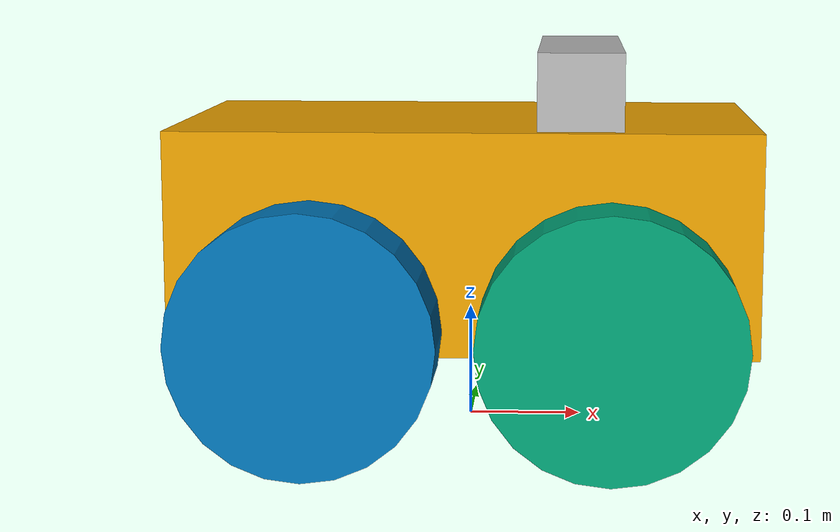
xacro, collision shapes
<?xml version="1.0"?>

<robot
  xmlns:sensor="http://playerstage.sourceforge.net/gazebo/xmlschema/#sensor"
  xmlns:controller="http://playerstage.sourceforge.net/gazebo/xmlschema/#controller"
  xmlns:interface="http://playerstage.sourceforge.net/gazebo/xmlschema/#interface"
  xmlns:xacro="http://ros.org/wiki/xacro"
  name="pioneer3at">

  <xacro:include filename="$(find zs_description)/urdf/include/p3at/pioneer3at_body.xacro"/>

  <xacro:include filename="$(find zs_description)/urdf/include/kinect/kinect.urdf.xacro"/>
  <xacro:sensor_kinect parent="base_link"></xacro:sensor_kinect>

</robot>

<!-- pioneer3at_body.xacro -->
<robot xmlns:sensor="http://playerstage.sourceforge.net/gazebo/xmlschema/#sensor"
  xmlns:controller="http://playerstage.sourceforge.net/gazebo/xmlschema/#controller"
  xmlns:interface="http://playerstage.sourceforge.net/gazebo/xmlschema/#interface"
  xmlns:xacro="http://ros.org/wiki/xacro"
  >

  <!-- Chassis -->
  <link name="base_link">
    <inertial>
      <mass value="14.0"/>
      <origin xyz="0 0 0.177"/>
      <inertia ixx="0.14711667" ixy="0.0" ixz="0.0"
        iyy="0.334951167" iyz="0.0"
        izz="0.3978345"/>
    </inertial>
    <visual name="base_visual">
      <origin xyz="0 0 0.18" rpy="0 0 0"/>
      <geometry name="pioneer_geom">
        <mesh filename="package://zs_description/meshes/p3at_add/chassis.dae"/>
      </geometry>
    </visual>
    <collision>
      <origin xyz="0 0 0.18" rpy="0 0 0"/>
      <geometry>
        <box size="0.501 0.3 0.19"/>
      </geometry>
    </collision>
  </link>

  <link name="p3at_front_left_wheel">
    <inertial>
      <mass value="1.5"/>
      <origin xyz="0 0 0"/>
      <inertia ixx="0.005240625" ixy="0" ixz="0"
        iyy="0.005240625" iyz="0" izz="0.009075"/>
    </inertial>
    <visual name="visual">
      <origin xyz="0 0 0" rpy="0 0 0"/>
      <geometry name="geom">
        <mesh filename="package://zs_description/meshes/p3at_add/wheel.dae"/>
      </geometry>
    </visual>
    <collision>
      <origin xyz="0 0 0" rpy="0 0 0"/>
      <geometry>
        <cylinder radius="0.110" length="0.075"/>
      </geometry>
    </collision>
  </link>

  <joint name="p3at_front_left_wheel_joint" type="continuous">
    <axis xyz="0 0 -1"/>
    <limit effort="100" velocity="100" />
    <joint_properties damping="0.7"/>
    <origin xyz="0.125 0.2010 0.11" rpy="1.5707 0 0"/>
    <parent link="base_link"/>
    <child link="p3at_front_left_wheel"/>
  </joint>

  <link name="p3at_front_right_wheel">
    <inertial>
      <mass value="1.5"/>
      <origin xyz="0 0 0"/>
      <inertia ixx="0.005240625" ixy="0" ixz="0"
        iyy="0.005240625" iyz="0" izz="0.009075"/>
    </inertial>
    <visual name="visual">
      <origin xyz="0 0 0" rpy="0 0 0"/>
      <geometry name="geom">
        <mesh filename="package://zs_description/meshes/p3at_add/wheel.dae"/>
      </geometry>
    </visual>
    <collision>
      <origin xyz="0 0 0" rpy="0 0 0"/>
      <geometry>
        <cylinder radius="0.110" length="0.075"/>
      </geometry>
    </collision>
  </link>

  <joint name="p3at_front_right_wheel_joint" type="continuous">
    <axis xyz="0 0 -1"/>
    <limit effort="100" velocity="100" />
    <joint_properties damping="0.7"/>
    <origin xyz="0.125 -0.2010 0.11" rpy="1.5707 0 0"/>
    <parent link="base_link"/>
    <child link="p3at_front_right_wheel"/>
  </joint>

  <link name="p3at_rear_left_wheel">
    <inertial>
      <mass value="1.5"/>
      <origin xyz="0 0 0"/>
      <inertia ixx="0.005240625" ixy="0" ixz="0"
        iyy="0.005240625" iyz="0" izz="0.009075"/>
    </inertial>
    <visual name="visual">
      <origin xyz="0 0 0" rpy="0 0 0"/>
      <geometry name="geom">
        <mesh filename="package://zs_description/meshes/p3at_add/wheel.dae"/>
      </geometry>
    </visual>
    <collision>
      <origin xyz="0 0 0" rpy="0 0 0"/>
      <geometry>
        <cylinder radius="0.110" length="0.075"/>
      </geometry>
    </collision>
  </link>

  <joint name="p3at_rear_left_wheel_joint" type="continuous">
    <axis xyz="0 0 -1"/>
    <limit effort="100" velocity="100" />
    <joint_properties damping="0.7"/>
    <origin xyz="-0.125 0.2010 0.11" rpy="1.5707 0 0"/>
    <parent link="base_link"/>
    <child link="p3at_rear_left_wheel"/>
  </joint>

  <link name="p3at_rear_right_wheel">
    <inertial>
      <mass value="1.5"/>
      <origin xyz="0 0 0"/>
      <inertia ixx="0.005240625" ixy="0" ixz="0"
        iyy="0.005240625" iyz="0" izz="0.009075"/>
    </inertial>
    <visual name="visual">
      <origin xyz="0 0 0" rpy="0 0 0"/>
      <geometry name="geom">
        <mesh filename="package://zs_description/meshes/p3at_add/wheel.dae"/>
      </geometry>
    </visual>
    <collision>
      <origin xyz="0 0 0" rpy="0 0 0"/>
      <geometry>
        <cylinder radius="0.110" length="0.075"/>
      </geometry>
    </collision>
  </link>

  <joint name="p3at_rear_right_wheel_joint" type="continuous">
    <axis xyz="0 0 -1"/>
    <limit effort="100" velocity="100" />
    <joint_properties damping="0.7"/>
    <origin xyz="-0.125 -0.2010 0.11" rpy="1.5707 0 0"/>
    <parent link="base_link"/>
    <child link="p3at_rear_right_wheel"/>
  </joint>

  <gazebo>
    <plugin name="skid_steer_drive_controller" filename="libgazebo_ros_skid_steer_drive.so">
      <updateRate>100.0</updateRate>
      <robotNamespace>$(arg robot_name)</robotNamespace>
      <leftFrontJoint>p3at_front_left_wheel_joint</leftFrontJoint>
      <rightFrontJoint>p3at_front_right_wheel_joint</rightFrontJoint>
      <leftRearJoint>p3at_rear_left_wheel_joint</leftRearJoint>
      <rightRearJoint>p3at_rear_right_wheel_joint</rightRearJoint>
      <wheelSeparation>0.4</wheelSeparation>
      <wheelDiameter>0.215</wheelDiameter>
      <robotBaseFrame>base_link</robotBaseFrame>
      <torque>200</torque>
      <commandTopic>cmd_vel</commandTopic>
      <odometryTopic>odom</odometryTopic>
      <odometryFrame>odom</odometryFrame>
      <broadcastTF>true</broadcastTF>
      <covariance_x>0.0001</covariance_x>
      <covariance_y>0.0001</covariance_y>
      <covariance_yaw>0.01</covariance_yaw>
    </plugin>
  </gazebo>

  <gazebo>
    <plugin name="imu_plugin" filename="libgazebo_ros_imu.so">
      <alwaysOn>true</alwaysOn>
      <bodyName>base_link</bodyName>
      <topicName>imu</topicName>
      <serviceName>imu_service</serviceName>
      <gaussianNoise>0.0</gaussianNoise>
      <updateRate>20.0</updateRate>
    </plugin>
  </gazebo>

</robot>

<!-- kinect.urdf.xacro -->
<root name="sensor_kinect" xmlns:xacro="http://ros.org/wiki/xacro">
	<xacro:include filename="$(find zs_description)/urdf/include/kinect/kinect_gazebo.xacro" />
        <xacro:include filename="$(find zs_description)/urdf/include/kinect/kinect_properties.urdf.xacro"/>

   	<!-- camera_name has to be unique! -->
	<xacro:kinect_sensor link_name="camera_depth_frame" camera_name="camera1" frame_name="camera_depth_optical_frame"/>

	<!-- Parameterised in part by the values in kinect_properties.urdf.xacro -->
	<xacro:macro name="sensor_kinect" params="parent">
		<joint name="camera_rgb_joint" type="fixed">
		      <origin xyz="${cam_px} ${cam_py} ${cam_pz}"
			      rpy="${cam_or} ${cam_op} ${cam_oy}"/>
			<parent link="${parent}"/>
			<child link="camera_rgb_frame" />
		</joint>
		<link name="camera_rgb_frame">
			<inertial>
				<mass value="0.001" />
				<origin xyz="0 0 0" />
				<inertia ixx="0.0001" ixy="0.0" ixz="0.0" iyy="0.0001" iyz="0.0" izz="0.0001" />
			</inertial>
		</link>
		<joint name="camera_rgb_optical_joint" type="fixed">
			<origin xyz="0 0 0" rpy="${-M_PI/2} 0 ${-M_PI/2}" />
			<parent link="camera_rgb_frame" />
			<child link="camera_rgb_optical_frame" />
		</joint>
		<link name="camera_rgb_optical_frame">
			<inertial>
				<mass value="0.001" />
				<origin xyz="0 0 0" />
				<inertia ixx="0.0001" ixy="0.0" ixz="0.0" iyy="0.0001" iyz="0.0" izz="0.0001" />
			</inertial>
		</link>

		<joint name="camera_joint" type="fixed">
			<origin xyz="-0.031 ${-cam_py} -0.016" rpy="0 0 0"/>
			<parent link="camera_rgb_frame"/>
			<child link="camera_link"/>
		</joint>
		<!--zs_description-->
		<link name="camera_link">
			<visual>
			 <origin xyz="0 0 0" rpy="0 0 ${M_PI/2}"/>
				<geometry>
				<mesh filename="package://zs_description/meshes/kinect/kinect.dae"/>
				</geometry>
			</visual>
			<collision>
				<origin xyz="0.0 0.0 0.0" rpy="0 0 0"/>
				<geometry>
					<box size="0.07271 0.27794 0.073"/>
				</geometry>
			</collision>
			<inertial>
				<mass value="0.001" />
				<origin xyz="0 0 0" />
				<inertia ixx="0.0001" ixy="0.0" ixz="0.0" iyy="0.0001" iyz="0.0" izz="0.0001" />
			</inertial>
		</link>

		<joint name="camera_depth_joint" type="fixed">
			<origin xyz="0 ${2 * -cam_py} 0" rpy="0 0 0" />
			<parent link="camera_rgb_frame" />
			<child link="camera_depth_frame" />
		</joint>
		<!--zs_description-->
		<link name="camera_depth_frame">
			<inertial>
				<mass value="0.001" />
				<origin xyz="0 0 0" />
				<inertia ixx="0.0001" ixy="0.0" ixz="0.0" iyy="0.0001" iyz="0.0" izz="0.0001" />
			</inertial>
		</link>
		<joint name="camera_depth_optical_joint" type="fixed">
			<origin xyz="0 0 0" rpy="${-M_PI/2} 0 ${-M_PI/2}" />
			<parent link="camera_depth_frame" />
			<child link="camera_depth_optical_frame" />
		</joint>
		<link name="camera_depth_optical_frame">
			<inertial>
				<mass value="0.001" />
				<origin xyz="0 0 0" />
				<inertia ixx="0.0001" ixy="0.0" ixz="0.0" iyy="0.0001" iyz="0.0" izz="0.0001" />
			</inertial>
		</link>
	</xacro:macro>
</root>

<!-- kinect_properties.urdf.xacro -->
<root>
  <!--
    These properties must be observed by any machine
	translation and rotation of camera from the tabletop
   -->
	<property name="cam_px" value="0.13" />
	<property name="cam_py" value="0" />
	<property name="cam_pz" value="0.32" />
	<property name="cam_or" value="0" />
	<property name="cam_op" value="0" />
	<property name="cam_oy" value="0" />

</root>
